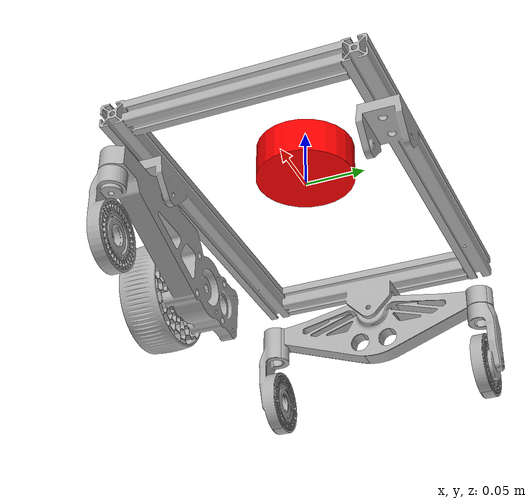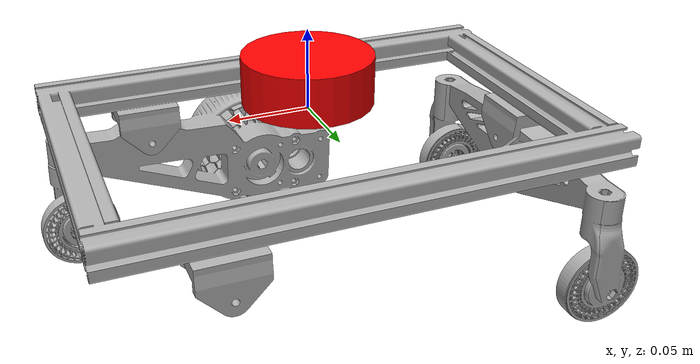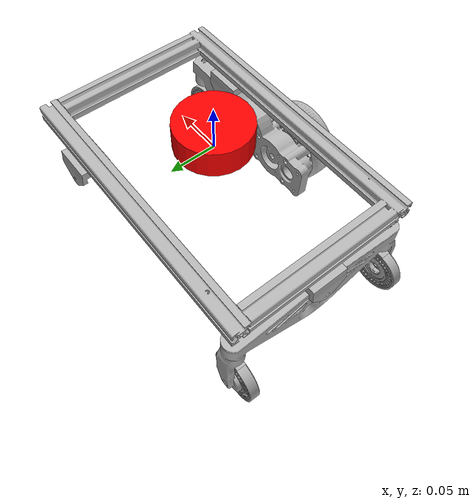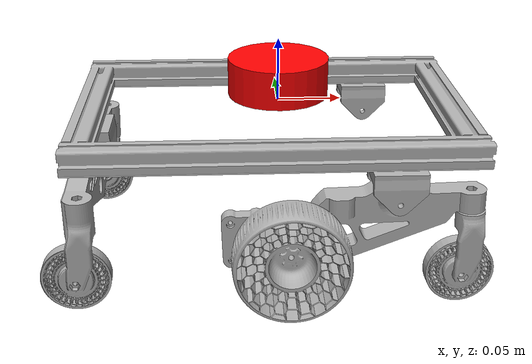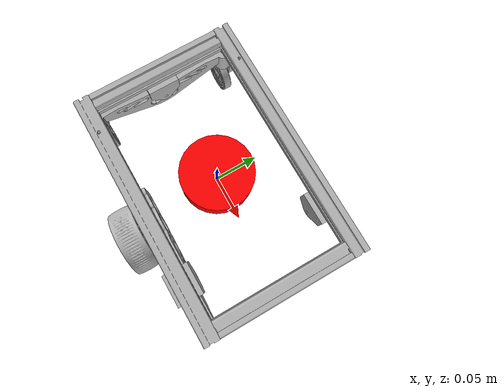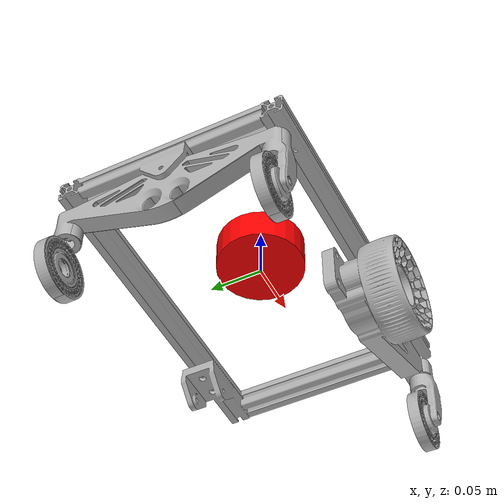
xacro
<?xml version="1.0" ?>
<robot name="midibot" xmlns:xacro="http://www.ros.org/wiki/xacro">

<xacro:include filename="$(find midibot_description)/urdf/materials.xacro" />
<xacro:include filename="$(find midibot_description)/urdf/midibot.trans" />
<xacro:include filename="$(find midibot_description)/urdf/midibot.gazebo" />
<xacro:include filename="$(find midibot_description)/urdf/laser_scan.xacro" />

<link name="base_link">
  <inertial>
    <origin xyz="0.058138245501266346 -0.4356917184158457 0.3982374386490078" rpy="0 0 0"/>
    <mass value="1.669036100199427"/>
    <inertia ixx="0.010954" iyy="0.021334" izz="0.031913" ixy="-2.8e-05" iyz="0.0" ixz="7.4e-05"/>
  </inertial>
  <visual>
    <origin xyz="0 0 0" rpy="0 0 0"/>
    <geometry>
      <mesh filename="file://$(find midibot_description)/meshes/base_link.stl" scale="0.001 0.001 0.001"/>
    </geometry>
    <material name="silver"/>
  </visual>
  <collision>
    <origin xyz="0 0 0" rpy="0 0 0"/>
    <geometry>
      <mesh filename="file://$(find midibot_description)/meshes/base_link.stl" scale="0.001 0.001 0.001"/>
    </geometry>
  </collision>
</link>

<link name="back_wheel_1">
  <inertial>
    <origin xyz="-0.0030565675631702705 7.453933822271219e-05 -0.0243059383465119" rpy="0 0 0"/>
    <mass value="1.0328305907835604"/>
    <inertia ixx="0.005772" iyy="0.000756" izz="0.005143" ixy="9e-06" iyz="-1.3e-05" ixz="-4.8e-05"/>
  </inertial>
  <visual>
    <origin xyz="0.090488 0.436102 -0.36973" rpy="0 0 0"/>
    <geometry>
      <mesh filename="file://$(find midibot_description)/meshes/back_wheel_1.stl" scale="0.001 0.001 0.001"/>
    </geometry>
    <material name="silver"/>
  </visual>
  <collision>
    <origin xyz="0.090488 0.436102 -0.36973" rpy="0 0 0"/>
    <geometry>
      <mesh filename="file://$(find midibot_description)/meshes/back_wheel_1.stl" scale="0.001 0.001 0.001"/>
    </geometry>
  </collision>
</link>

<link name="right_wheel_1">
  <inertial>
    <origin xyz="-0.03922643326067311 -0.008086930603845244 -0.030204983854317358" rpy="0 0 0"/>
    <mass value="1.5935115288825157"/>
    <inertia ixx="0.001114" iyy="0.005844" izz="0.005391" ixy="-0.000485" iyz="-0.000102" ixz="-0.000312"/>
  </inertial>
  <visual>
    <origin xyz="-0.144339 0.529459 -0.36961" rpy="0 0 0"/>
    <geometry>
      <mesh filename="file://$(find midibot_description)/meshes/right_wheel_1.stl" scale="0.001 0.001 0.001"/>
    </geometry>
    <material name="silver"/>
  </visual>
  <collision>
    <origin xyz="-0.144339 0.529459 -0.36961" rpy="0 0 0"/>
    <geometry>
      <mesh filename="file://$(find midibot_description)/meshes/right_wheel_1.stl" scale="0.001 0.001 0.001"/>
    </geometry>
  </collision>
</link>

<link name="left_wheel_1">
  <inertial>
    <origin xyz="-0.03927003071156297 0.007873469766651764 -0.030204995415972824" rpy="0 0 0"/>
    <mass value="1.5935106808170936"/>
    <inertia ixx="0.001109" iyy="0.005849" izz="0.005391" ixy="0.000459" iyz="0.0001" ixz="-0.000312"/>
  </inertial>
  <visual>
    <origin xyz="-0.143827 0.341455 -0.36961" rpy="0 0 0"/>
    <geometry>
      <mesh filename="file://$(find midibot_description)/meshes/left_wheel_1.stl" scale="0.001 0.001 0.001"/>
    </geometry>
    <material name="silver"/>
  </visual>
  <collision>
    <origin xyz="-0.143827 0.341455 -0.36961" rpy="0 0 0"/>
    <geometry>
      <mesh filename="file://$(find midibot_description)/meshes/left_wheel_1.stl" scale="0.001 0.001 0.001"/>
    </geometry>
  </collision>
</link>

<joint name="Revolute 1" type="continuous">
  <origin xyz="-0.152 0.003 -0.043" rpy="0 0 0"/>
  <parent link="base_link"/>
  <child link="back_wheel_1"/>
  <axis xyz="-1.0 0.0 0.0"/>
</joint>

<joint name="Revolute 2" type="continuous">
  <origin xyz="0.083 -0.091 -0.043" rpy="0 0 0"/>
  <parent link="base_link"/>
  <child link="right_wheel_1"/>
  <axis xyz="-0.0 -1.0 0.0"/>
</joint>

<joint name="Revolute 3" type="continuous">
  <origin xyz="0.083 0.097 -0.043" rpy="0 0 0"/>
  <parent link="base_link"/>
  <child link="left_wheel_1"/>
  <axis xyz="0.005447 -0.999985 0.0"/>
</joint>

</robot>

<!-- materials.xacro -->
<robot name="midibot" xmlns:xacro="http://www.ros.org/wiki/xacro" >

<material name="silver">
  <color rgba="0.700 0.700 0.700 1.000"/>
</material>

<material name="black">
  <color rgba="0.000 0.000 0.000 1.000"/>
</material>

<material name="white">
  <color rgba="1.000 1.000 1.000 1.000"/>
</material>

<material name="red">
  <color rgba="1.000 0.000 0.000 1.000"/>
</material>

</robot>

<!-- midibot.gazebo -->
<robot name="midibot" xmlns:xacro="http://www.ros.org/wiki/xacro" >

<xacro:property name="body_color" value="Gazebo/Silver" />

<gazebo>
  <plugin name="control" filename="libgazebo_ros_control.so"/>
</gazebo>
<gazebo reference="base_link">
  <material>${body_color}</material>
  <mu1>0.2</mu1>
  <mu2>0.2</mu2>
  <self_collide>true</self_collide>
  <gravity>true</gravity>
</gazebo>

<gazebo reference="back_wheel_1">
  <material>${body_color}</material>
  <mu1>0.2</mu1>
  <mu2>0.2</mu2>
  <self_collide>true</self_collide>
</gazebo>

<gazebo reference="right_wheel_1">
  <material>${body_color}</material>
  <mu1>0.2</mu1>
  <mu2>0.2</mu2>
  <self_collide>true</self_collide>
</gazebo>

<gazebo reference="left_wheel_1">
  <material>${body_color}</material>
  <mu1>0.2</mu1>
  <mu2>0.2</mu2>
  <self_collide>true</self_collide>
</gazebo>

</robot>

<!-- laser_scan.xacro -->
<robot name="midibot" xmlns:xacro="http://www.ros.org/wiki/xacro" >

<link name="laser_frame">
  <visual>
    <origin xyz="0 0 0" rpy="0 0 0"/>
    <geometry>
        a cylinder with a radius of 0.1 and a length of 0.1
        <cylinder radius="0.04" length="0.03"/>
    </geometry>
    <material name="red"/>
  </visual>
  <collision>
    <origin xyz="0 0 0" rpy="0 0 0"/>
    <geometry>
      <cylinder radius="0.1" length="0.1"/>
    </geometry>
  </collision>
</link>

<joint name='laser' type='fixed'>
  <origin xyz="0 0 0.02" rpy="0 0 0"/>
  <parent link="base_link"/>
  <child link="laser_frame"/>
  <axis xyz="-1.0 0.0 0.0"/>

</joint>
</robot>
